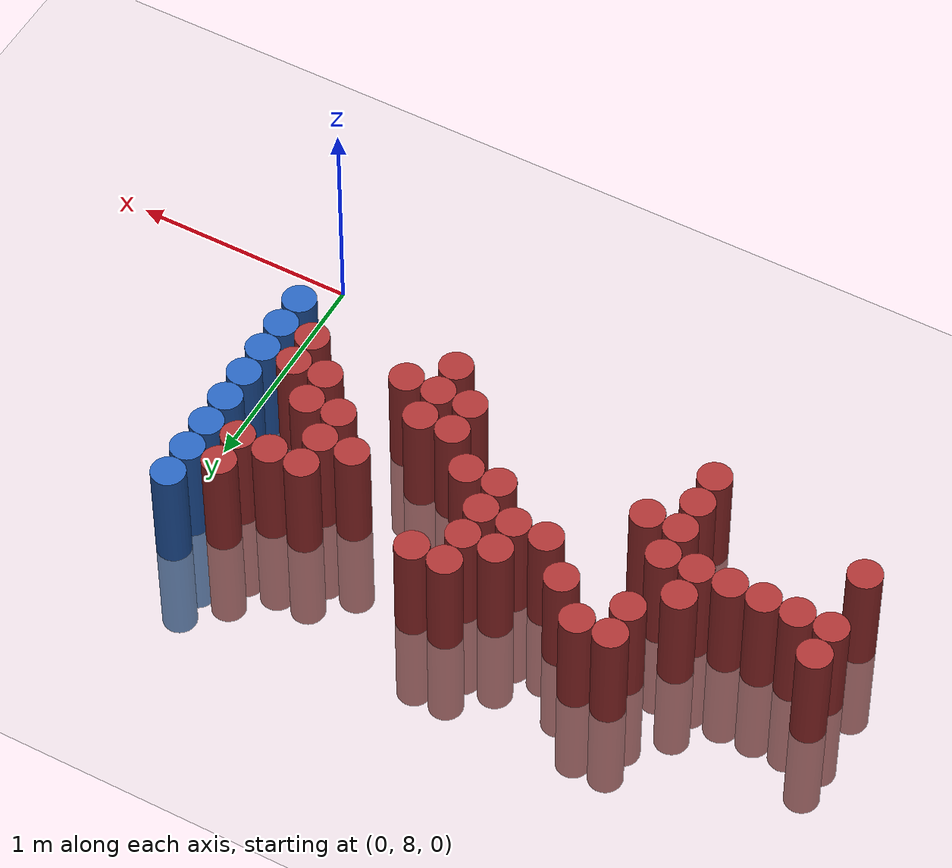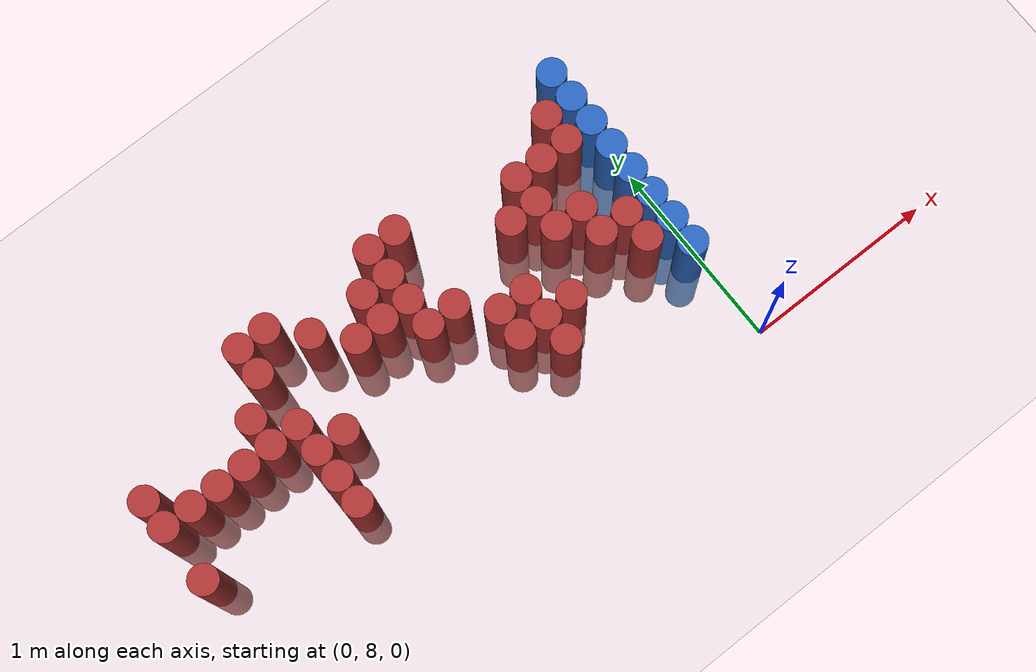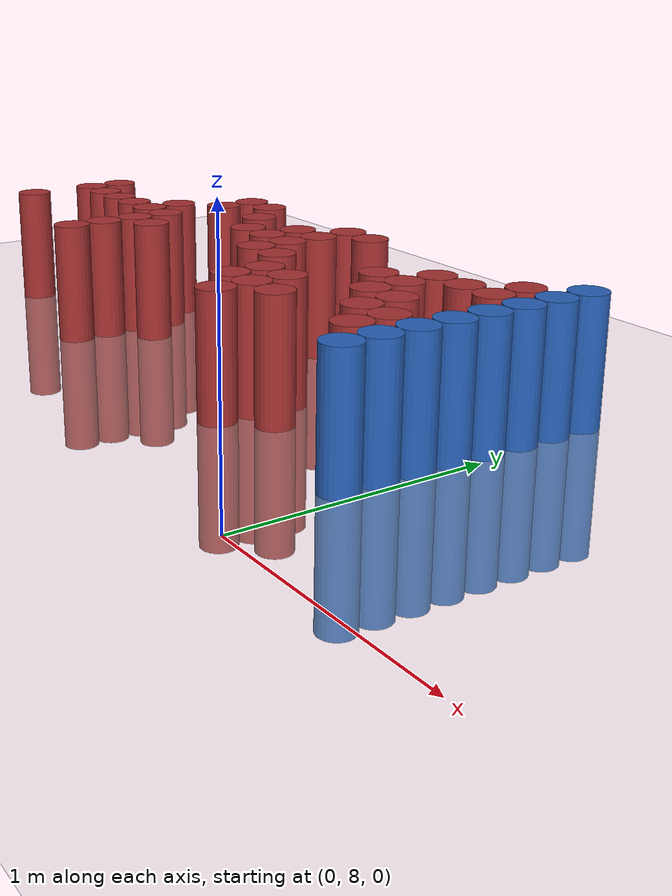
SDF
<sdf version="1.6">
 <world name="default">
  <model name="ground_plane">
   <static>1</static>
   <link name="link">
    <collision name="collision">
     <geometry><plane><normal>0 0 1</normal><size>100 100</size></plane></geometry>
     <surface><friction><ode><mu>100</mu><mu2>50</mu2></ode></friction></surface>
    </collision>
    <visual name="visual">
     <cast_shadows>0</cast_shadows>
     <geometry><plane><normal>0 0 1</normal><size>100 100</size></plane></geometry>
     <material>
      <script><uri>file://media/materials/scripts/gazebo.material</uri><name>Gazebo/Grey</name></script>
     </material>
    </visual>
   </link>
  </model>
  <model name="unit_cylinder_174">
   <static>1</static>
   <pose>-2.775000 8.625000 0.000000 0.000000 0.000000 0.000000</pose>
   <link name="link">
    <inertial>
     <mass>1</mass>
     <inertia><ixx>0.145833</ixx><ixy>0</ixy><ixz>0</ixz><iyy>0.145833</iyy><iyz>0</iyz><izz>0.125</izz></inertia>
    </inertial>
    <collision name="collision">
     <geometry><cylinder><radius>0.075000</radius><length>1</length></cylinder></geometry>
    </collision>
    <visual name="visual">
     <geometry><cylinder><radius>0.075000</radius><length>1</length></cylinder></geometry>
     <material>
      <ambient>0.648000 0.192000 0.192000 1</ambient>
      <diffuse>0.648000 0.192000 0.192000 1</diffuse>
     </material>
     <material>
      <script><name>Gazebo/Grey</name><uri>file://media/materials/scripts/gazebo.material</uri></script>
     </material>
    </visual>
   </link>
  </model>
  <model name="unit_cylinder_175">
   <static>1</static>
   <pose>-2.775000 8.925000 0.000000 0.000000 0.000000 0.000000</pose>
   <link name="link">
    <inertial>
     <mass>1</mass>
     <inertia><ixx>0.145833</ixx><ixy>0</ixy><ixz>0</ixz><iyy>0.145833</iyy><iyz>0</iyz><izz>0.125</izz></inertia>
    </inertial>
    <collision name="collision">
     <geometry><cylinder><radius>0.075000</radius><length>1</length></cylinder></geometry>
    </collision>
    <visual name="visual">
     <geometry><cylinder><radius>0.075000</radius><length>1</length></cylinder></geometry>
     <material>
      <ambient>0.648000 0.192000 0.192000 1</ambient>
      <diffuse>0.648000 0.192000 0.192000 1</diffuse>
     </material>
     <material>
      <script><name>Gazebo/Grey</name><uri>file://media/materials/scripts/gazebo.material</uri></script>
     </material>
    </visual>
   </link>
  </model>
  <model name="unit_cylinder_176">
   <static>1</static>
   <pose>-2.775000 9.075000 0.000000 0.000000 0.000000 0.000000</pose>
   <link name="link">
    <inertial>
     <mass>1</mass>
     <inertia><ixx>0.145833</ixx><ixy>0</ixy><ixz>0</ixz><iyy>0.145833</iyy><iyz>0</iyz><izz>0.125</izz></inertia>
    </inertial>
    <collision name="collision">
     <geometry><cylinder><radius>0.075000</radius><length>1</length></cylinder></geometry>
    </collision>
    <visual name="visual">
     <geometry><cylinder><radius>0.075000</radius><length>1</length></cylinder></geometry>
     <material>
      <ambient>0.648000 0.192000 0.192000 1</ambient>
      <diffuse>0.648000 0.192000 0.192000 1</diffuse>
     </material>
     <material>
      <script><name>Gazebo/Grey</name><uri>file://media/materials/scripts/gazebo.material</uri></script>
     </material>
    </visual>
   </link>
  </model>
  <model name="unit_cylinder_178">
   <static>1</static>
   <pose>-2.625000 8.925000 0.000000 0.000000 0.000000 0.000000</pose>
   <link name="link">
    <inertial>
     <mass>1</mass>
     <inertia><ixx>0.145833</ixx><ixy>0</ixy><ixz>0</ixz><iyy>0.145833</iyy><iyz>0</iyz><izz>0.125</izz></inertia>
    </inertial>
    <collision name="collision">
     <geometry><cylinder><radius>0.075000</radius><length>1</length></cylinder></geometry>
    </collision>
    <visual name="visual">
     <geometry><cylinder><radius>0.075000</radius><length>1</length></cylinder></geometry>
     <material>
      <ambient>0.648000 0.192000 0.192000 1</ambient>
      <diffuse>0.648000 0.192000 0.192000 1</diffuse>
     </material>
     <material>
      <script><name>Gazebo/Grey</name><uri>file://media/materials/scripts/gazebo.material</uri></script>
     </material>
    </visual>
   </link>
  </model>
  <model name="unit_cylinder_182">
   <static>1</static>
   <pose>-2.475000 8.925000 0.000000 0.000000 0.000000 0.000000</pose>
   <link name="link">
    <inertial>
     <mass>1</mass>
     <inertia><ixx>0.145833</ixx><ixy>0</ixy><ixz>0</ixz><iyy>0.145833</iyy><iyz>0</iyz><izz>0.125</izz></inertia>
    </inertial>
    <collision name="collision">
     <geometry><cylinder><radius>0.075000</radius><length>1</length></cylinder></geometry>
    </collision>
    <visual name="visual">
     <geometry><cylinder><radius>0.075000</radius><length>1</length></cylinder></geometry>
     <material>
      <ambient>0.648000 0.192000 0.192000 1</ambient>
      <diffuse>0.648000 0.192000 0.192000 1</diffuse>
     </material>
     <material>
      <script><name>Gazebo/Grey</name><uri>file://media/materials/scripts/gazebo.material</uri></script>
     </material>
    </visual>
   </link>
  </model>
  <model name="unit_cylinder_191">
   <static>1</static>
   <pose>-2.325000 8.925000 0.000000 0.000000 0.000000 0.000000</pose>
   <link name="link">
    <inertial>
     <mass>1</mass>
     <inertia><ixx>0.145833</ixx><ixy>0</ixy><ixz>0</ixz><iyy>0.145833</iyy><iyz>0</iyz><izz>0.125</izz></inertia>
    </inertial>
    <collision name="collision">
     <geometry><cylinder><radius>0.075000</radius><length>1</length></cylinder></geometry>
    </collision>
    <visual name="visual">
     <geometry><cylinder><radius>0.075000</radius><length>1</length></cylinder></geometry>
     <material>
      <ambient>0.648000 0.192000 0.192000 1</ambient>
      <diffuse>0.648000 0.192000 0.192000 1</diffuse>
     </material>
     <material>
      <script><name>Gazebo/Grey</name><uri>file://media/materials/scripts/gazebo.material</uri></script>
     </material>
    </visual>
   </link>
  </model>
  <model name="unit_cylinder_201">
   <static>1</static>
   <pose>-2.175000 8.925000 0.000000 0.000000 0.000000 0.000000</pose>
   <link name="link">
    <inertial>
     <mass>1</mass>
     <inertia><ixx>0.145833</ixx><ixy>0</ixy><ixz>0</ixz><iyy>0.145833</iyy><iyz>0</iyz><izz>0.125</izz></inertia>
    </inertial>
    <collision name="collision">
     <geometry><cylinder><radius>0.075000</radius><length>1</length></cylinder></geometry>
    </collision>
    <visual name="visual">
     <geometry><cylinder><radius>0.075000</radius><length>1</length></cylinder></geometry>
     <material>
      <ambient>0.648000 0.192000 0.192000 1</ambient>
      <diffuse>0.648000 0.192000 0.192000 1</diffuse>
     </material>
     <material>
      <script><name>Gazebo/Grey</name><uri>file://media/materials/scripts/gazebo.material</uri></script>
     </material>
    </visual>
   </link>
  </model>
  <model name="unit_cylinder_202">
   <static>1</static>
   <pose>-2.175000 9.075000 0.000000 0.000000 0.000000 0.000000</pose>
   <link name="link">
    <inertial>
     <mass>1</mass>
     <inertia><ixx>0.145833</ixx><ixy>0</ixy><ixz>0</ixz><iyy>0.145833</iyy><iyz>0</iyz><izz>0.125</izz></inertia>
    </inertial>
    <collision name="collision">
     <geometry><cylinder><radius>0.075000</radius><length>1</length></cylinder></geometry>
    </collision>
    <visual name="visual">
     <geometry><cylinder><radius>0.075000</radius><length>1</length></cylinder></geometry>
     <material>
      <ambient>0.648000 0.192000 0.192000 1</ambient>
      <diffuse>0.648000 0.192000 0.192000 1</diffuse>
     </material>
     <material>
      <script><name>Gazebo/Grey</name><uri>file://media/materials/scripts/gazebo.material</uri></script>
     </material>
    </visual>
   </link>
  </model>
  <model name="unit_cylinder_210">
   <static>1</static>
   <pose>-2.025000 8.475000 0.000000 0.000000 0.000000 0.000000</pose>
   <link name="link">
    <inertial>
     <mass>1</mass>
     <inertia><ixx>0.145833</ixx><ixy>0</ixy><ixz>0</ixz><iyy>0.145833</iyy><iyz>0</iyz><izz>0.125</izz></inertia>
    </inertial>
    <collision name="collision">
     <geometry><cylinder><radius>0.075000</radius><length>1</length></cylinder></geometry>
    </collision>
    <visual name="visual">
     <geometry><cylinder><radius>0.075000</radius><length>1</length></cylinder></geometry>
     <material>
      <ambient>0.648000 0.192000 0.192000 1</ambient>
      <diffuse>0.648000 0.192000 0.192000 1</diffuse>
     </material>
     <material>
      <script><name>Gazebo/Grey</name><uri>file://media/materials/scripts/gazebo.material</uri></script>
     </material>
    </visual>
   </link>
  </model>
  <model name="unit_cylinder_211">
   <static>1</static>
   <pose>-2.025000 8.625000 0.000000 0.000000 0.000000 0.000000</pose>
   <link name="link">
    <inertial>
     <mass>1</mass>
     <inertia><ixx>0.145833</ixx><ixy>0</ixy><ixz>0</ixz><iyy>0.145833</iyy><iyz>0</iyz><izz>0.125</izz></inertia>
    </inertial>
    <collision name="collision">
     <geometry><cylinder><radius>0.075000</radius><length>1</length></cylinder></geometry>
    </collision>
    <visual name="visual">
     <geometry><cylinder><radius>0.075000</radius><length>1</length></cylinder></geometry>
     <material>
      <ambient>0.648000 0.192000 0.192000 1</ambient>
      <diffuse>0.648000 0.192000 0.192000 1</diffuse>
     </material>
     <material>
      <script><name>Gazebo/Grey</name><uri>file://media/materials/scripts/gazebo.material</uri></script>
     </material>
    </visual>
   </link>
  </model>
  <model name="unit_cylinder_212">
   <static>1</static>
   <pose>-2.025000 8.775000 0.000000 0.000000 0.000000 0.000000</pose>
   <link name="link">
    <inertial>
     <mass>1</mass>
     <inertia><ixx>0.145833</ixx><ixy>0</ixy><ixz>0</ixz><iyy>0.145833</iyy><iyz>0</iyz><izz>0.125</izz></inertia>
    </inertial>
    <collision name="collision">
     <geometry><cylinder><radius>0.075000</radius><length>1</length></cylinder></geometry>
    </collision>
    <visual name="visual">
     <geometry><cylinder><radius>0.075000</radius><length>1</length></cylinder></geometry>
     <material>
      <ambient>0.648000 0.192000 0.192000 1</ambient>
      <diffuse>0.648000 0.192000 0.192000 1</diffuse>
     </material>
     <material>
      <script><name>Gazebo/Grey</name><uri>file://media/materials/scripts/gazebo.material</uri></script>
     </material>
    </visual>
   </link>
  </model>
  <model name="unit_cylinder_213">
   <static>1</static>
   <pose>-2.025000 8.925000 0.000000 0.000000 0.000000 0.000000</pose>
   <link name="link">
    <inertial>
     <mass>1</mass>
     <inertia><ixx>0.145833</ixx><ixy>0</ixy><ixz>0</ixz><iyy>0.145833</iyy><iyz>0</iyz><izz>0.125</izz></inertia>
    </inertial>
    <collision name="collision">
     <geometry><cylinder><radius>0.075000</radius><length>1</length></cylinder></geometry>
    </collision>
    <visual name="visual">
     <geometry><cylinder><radius>0.075000</radius><length>1</length></cylinder></geometry>
     <material>
      <ambient>0.648000 0.192000 0.192000 1</ambient>
      <diffuse>0.648000 0.192000 0.192000 1</diffuse>
     </material>
     <material>
      <script><name>Gazebo/Grey</name><uri>file://media/materials/scripts/gazebo.material</uri></script>
     </material>
    </visual>
   </link>
  </model>
  <model name="unit_cylinder_214">
   <static>1</static>
   <pose>-2.025000 9.225000 0.000000 0.000000 0.000000 0.000000</pose>
   <link name="link">
    <inertial>
     <mass>1</mass>
     <inertia><ixx>0.145833</ixx><ixy>0</ixy><ixz>0</ixz><iyy>0.145833</iyy><iyz>0</iyz><izz>0.125</izz></inertia>
    </inertial>
    <collision name="collision">
     <geometry><cylinder><radius>0.075000</radius><length>1</length></cylinder></geometry>
    </collision>
    <visual name="visual">
     <geometry><cylinder><radius>0.075000</radius><length>1</length></cylinder></geometry>
     <material>
      <ambient>0.648000 0.192000 0.192000 1</ambient>
      <diffuse>0.648000 0.192000 0.192000 1</diffuse>
     </material>
     <material>
      <script><name>Gazebo/Grey</name><uri>file://media/materials/scripts/gazebo.material</uri></script>
     </material>
    </visual>
   </link>
  </model>
  <model name="unit_cylinder_215">
   <static>1</static>
   <pose>-2.025000 9.375000 0.000000 0.000000 0.000000 0.000000</pose>
   <link name="link">
    <inertial>
     <mass>1</mass>
     <inertia><ixx>0.145833</ixx><ixy>0</ixy><ixz>0</ixz><iyy>0.145833</iyy><iyz>0</iyz><izz>0.125</izz></inertia>
    </inertial>
    <collision name="collision">
     <geometry><cylinder><radius>0.075000</radius><length>1</length></cylinder></geometry>
    </collision>
    <visual name="visual">
     <geometry><cylinder><radius>0.075000</radius><length>1</length></cylinder></geometry>
     <material>
      <ambient>0.648000 0.192000 0.192000 1</ambient>
      <diffuse>0.648000 0.192000 0.192000 1</diffuse>
     </material>
     <material>
      <script><name>Gazebo/Grey</name><uri>file://media/materials/scripts/gazebo.material</uri></script>
     </material>
    </visual>
   </link>
  </model>
  <model name="unit_cylinder_217">
   <static>1</static>
   <pose>-1.875000 8.775000 0.000000 0.000000 0.000000 0.000000</pose>
   <link name="link">
    <inertial>
     <mass>1</mass>
     <inertia><ixx>0.145833</ixx><ixy>0</ixy><ixz>0</ixz><iyy>0.145833</iyy><iyz>0</iyz><izz>0.125</izz></inertia>
    </inertial>
    <collision name="collision">
     <geometry><cylinder><radius>0.075000</radius><length>1</length></cylinder></geometry>
    </collision>
    <visual name="visual">
     <geometry><cylinder><radius>0.075000</radius><length>1</length></cylinder></geometry>
     <material>
      <ambient>0.648000 0.192000 0.192000 1</ambient>
      <diffuse>0.648000 0.192000 0.192000 1</diffuse>
     </material>
     <material>
      <script><name>Gazebo/Grey</name><uri>file://media/materials/scripts/gazebo.material</uri></script>
     </material>
    </visual>
   </link>
  </model>
  <model name="unit_cylinder_218">
   <static>1</static>
   <pose>-1.875000 9.375000 0.000000 0.000000 0.000000 0.000000</pose>
   <link name="link">
    <inertial>
     <mass>1</mass>
     <inertia><ixx>0.145833</ixx><ixy>0</ixy><ixz>0</ixz><iyy>0.145833</iyy><iyz>0</iyz><izz>0.125</izz></inertia>
    </inertial>
    <collision name="collision">
     <geometry><cylinder><radius>0.075000</radius><length>1</length></cylinder></geometry>
    </collision>
    <visual name="visual">
     <geometry><cylinder><radius>0.075000</radius><length>1</length></cylinder></geometry>
     <material>
      <ambient>0.648000 0.192000 0.192000 1</ambient>
      <diffuse>0.648000 0.192000 0.192000 1</diffuse>
     </material>
     <material>
      <script><name>Gazebo/Grey</name><uri>file://media/materials/scripts/gazebo.material</uri></script>
     </material>
    </visual>
   </link>
  </model>
  <model name="unit_cylinder_220">
   <static>1</static>
   <pose>-1.725000 9.225000 0.000000 0.000000 0.000000 0.000000</pose>
   <link name="link">
    <inertial>
     <mass>1</mass>
     <inertia><ixx>0.145833</ixx><ixy>0</ixy><ixz>0</ixz><iyy>0.145833</iyy><iyz>0</iyz><izz>0.125</izz></inertia>
    </inertial>
    <collision name="collision">
     <geometry><cylinder><radius>0.075000</radius><length>1</length></cylinder></geometry>
    </collision>
    <visual name="visual">
     <geometry><cylinder><radius>0.075000</radius><length>1</length></cylinder></geometry>
     <material>
      <ambient>0.648000 0.192000 0.192000 1</ambient>
      <diffuse>0.648000 0.192000 0.192000 1</diffuse>
     </material>
     <material>
      <script><name>Gazebo/Grey</name><uri>file://media/materials/scripts/gazebo.material</uri></script>
     </material>
    </visual>
   </link>
  </model>
  <model name="unit_cylinder_223">
   <static>1</static>
   <pose>-1.575000 9.075000 0.000000 0.000000 0.000000 0.000000</pose>
   <link name="link">
    <inertial>
     <mass>1</mass>
     <inertia><ixx>0.145833</ixx><ixy>0</ixy><ixz>0</ixz><iyy>0.145833</iyy><iyz>0</iyz><izz>0.125</izz></inertia>
    </inertial>
    <collision name="collision">
     <geometry><cylinder><radius>0.075000</radius><length>1</length></cylinder></geometry>
    </collision>
    <visual name="visual">
     <geometry><cylinder><radius>0.075000</radius><length>1</length></cylinder></geometry>
     <material>
      <ambient>0.648000 0.192000 0.192000 1</ambient>
      <diffuse>0.648000 0.192000 0.192000 1</diffuse>
     </material>
     <material>
      <script><name>Gazebo/Grey</name><uri>file://media/materials/scripts/gazebo.material</uri></script>
     </material>
    </visual>
   </link>
  </model>
  <model name="unit_cylinder_225">
   <static>1</static>
   <pose>-1.425000 9.075000 0.000000 0.000000 0.000000 0.000000</pose>
   <link name="link">
    <inertial>
     <mass>1</mass>
     <inertia><ixx>0.145833</ixx><ixy>0</ixy><ixz>0</ixz><iyy>0.145833</iyy><iyz>0</iyz><izz>0.125</izz></inertia>
    </inertial>
    <collision name="collision">
     <geometry><cylinder><radius>0.075000</radius><length>1</length></cylinder></geometry>
    </collision>
    <visual name="visual">
     <geometry><cylinder><radius>0.075000</radius><length>1</length></cylinder></geometry>
     <material>
      <ambient>0.648000 0.192000 0.192000 1</ambient>
      <diffuse>0.648000 0.192000 0.192000 1</diffuse>
     </material>
     <material>
      <script><name>Gazebo/Grey</name><uri>file://media/materials/scripts/gazebo.material</uri></script>
     </material>
    </visual>
   </link>
  </model>
  <model name="unit_cylinder_226">
   <static>1</static>
   <pose>-1.425000 9.225000 0.000000 0.000000 0.000000 0.000000</pose>
   <link name="link">
    <inertial>
     <mass>1</mass>
     <inertia><ixx>0.145833</ixx><ixy>0</ixy><ixz>0</ixz><iyy>0.145833</iyy><iyz>0</iyz><izz>0.125</izz></inertia>
    </inertial>
    <collision name="collision">
     <geometry><cylinder><radius>0.075000</radius><length>1</length></cylinder></geometry>
    </collision>
    <visual name="visual">
     <geometry><cylinder><radius>0.075000</radius><length>1</length></cylinder></geometry>
     <material>
      <ambient>0.648000 0.192000 0.192000 1</ambient>
      <diffuse>0.648000 0.192000 0.192000 1</diffuse>
     </material>
     <material>
      <script><name>Gazebo/Grey</name><uri>file://media/materials/scripts/gazebo.material</uri></script>
     </material>
    </visual>
   </link>
  </model>
  <model name="unit_cylinder_228">
   <static>1</static>
   <pose>-1.275000 8.925000 0.000000 0.000000 0.000000 0.000000</pose>
   <link name="link">
    <inertial>
     <mass>1</mass>
     <inertia><ixx>0.145833</ixx><ixy>0</ixy><ixz>0</ixz><iyy>0.145833</iyy><iyz>0</iyz><izz>0.125</izz></inertia>
    </inertial>
    <collision name="collision">
     <geometry><cylinder><radius>0.075000</radius><length>1</length></cylinder></geometry>
    </collision>
    <visual name="visual">
     <geometry><cylinder><radius>0.075000</radius><length>1</length></cylinder></geometry>
     <material>
      <ambient>0.648000 0.192000 0.192000 1</ambient>
      <diffuse>0.648000 0.192000 0.192000 1</diffuse>
     </material>
     <material>
      <script><name>Gazebo/Grey</name><uri>file://media/materials/scripts/gazebo.material</uri></script>
     </material>
    </visual>
   </link>
  </model>
  <model name="unit_cylinder_229">
   <static>1</static>
   <pose>-1.275000 9.075000 0.000000 0.000000 0.000000 0.000000</pose>
   <link name="link">
    <inertial>
     <mass>1</mass>
     <inertia><ixx>0.145833</ixx><ixy>0</ixy><ixz>0</ixz><iyy>0.145833</iyy><iyz>0</iyz><izz>0.125</izz></inertia>
    </inertial>
    <collision name="collision">
     <geometry><cylinder><radius>0.075000</radius><length>1</length></cylinder></geometry>
    </collision>
    <visual name="visual">
     <geometry><cylinder><radius>0.075000</radius><length>1</length></cylinder></geometry>
     <material>
      <ambient>0.648000 0.192000 0.192000 1</ambient>
      <diffuse>0.648000 0.192000 0.192000 1</diffuse>
     </material>
     <material>
      <script><name>Gazebo/Grey</name><uri>file://media/materials/scripts/gazebo.material</uri></script>
     </material>
    </visual>
   </link>
  </model>
  <model name="unit_cylinder_230">
   <static>1</static>
   <pose>-1.275000 9.225000 0.000000 0.000000 0.000000 0.000000</pose>
   <link name="link">
    <inertial>
     <mass>1</mass>
     <inertia><ixx>0.145833</ixx><ixy>0</ixy><ixz>0</ixz><iyy>0.145833</iyy><iyz>0</iyz><izz>0.125</izz></inertia>
    </inertial>
    <collision name="collision">
     <geometry><cylinder><radius>0.075000</radius><length>1</length></cylinder></geometry>
    </collision>
    <visual name="visual">
     <geometry><cylinder><radius>0.075000</radius><length>1</length></cylinder></geometry>
     <material>
      <ambient>0.648000 0.192000 0.192000 1</ambient>
      <diffuse>0.648000 0.192000 0.192000 1</diffuse>
     </material>
     <material>
      <script><name>Gazebo/Grey</name><uri>file://media/materials/scripts/gazebo.material</uri></script>
     </material>
    </visual>
   </link>
  </model>
  <model name="unit_cylinder_231">
   <static>1</static>
   <pose>-1.275000 9.375000 0.000000 0.000000 0.000000 0.000000</pose>
   <link name="link">
    <inertial>
     <mass>1</mass>
     <inertia><ixx>0.145833</ixx><ixy>0</ixy><ixz>0</ixz><iyy>0.145833</iyy><iyz>0</iyz><izz>0.125</izz></inertia>
    </inertial>
    <collision name="collision">
     <geometry><cylinder><radius>0.075000</radius><length>1</length></cylinder></geometry>
    </collision>
    <visual name="visual">
     <geometry><cylinder><radius>0.075000</radius><length>1</length></cylinder></geometry>
     <material>
      <ambient>0.648000 0.192000 0.192000 1</ambient>
      <diffuse>0.648000 0.192000 0.192000 1</diffuse>
     </material>
     <material>
      <script><name>Gazebo/Grey</name><uri>file://media/materials/scripts/gazebo.material</uri></script>
     </material>
    </visual>
   </link>
  </model>
  <model name="unit_cylinder_234">
   <static>1</static>
   <pose>-1.125000 8.925000 0.000000 0.000000 0.000000 0.000000</pose>
   <link name="link">
    <inertial>
     <mass>1</mass>
     <inertia><ixx>0.145833</ixx><ixy>0</ixy><ixz>0</ixz><iyy>0.145833</iyy><iyz>0</iyz><izz>0.125</izz></inertia>
    </inertial>
    <collision name="collision">
     <geometry><cylinder><radius>0.075000</radius><length>1</length></cylinder></geometry>
    </collision>
    <visual name="visual">
     <geometry><cylinder><radius>0.075000</radius><length>1</length></cylinder></geometry>
     <material>
      <ambient>0.648000 0.192000 0.192000 1</ambient>
      <diffuse>0.648000 0.192000 0.192000 1</diffuse>
     </material>
     <material>
      <script><name>Gazebo/Grey</name><uri>file://media/materials/scripts/gazebo.material</uri></script>
     </material>
    </visual>
   </link>
  </model>
  <model name="unit_cylinder_235">
   <static>1</static>
   <pose>-1.125000 9.375000 0.000000 0.000000 0.000000 0.000000</pose>
   <link name="link">
    <inertial>
     <mass>1</mass>
     <inertia><ixx>0.145833</ixx><ixy>0</ixy><ixz>0</ixz><iyy>0.145833</iyy><iyz>0</iyz><izz>0.125</izz></inertia>
    </inertial>
    <collision name="collision">
     <geometry><cylinder><radius>0.075000</radius><length>1</length></cylinder></geometry>
    </collision>
    <visual name="visual">
     <geometry><cylinder><radius>0.075000</radius><length>1</length></cylinder></geometry>
     <material>
      <ambient>0.648000 0.192000 0.192000 1</ambient>
      <diffuse>0.648000 0.192000 0.192000 1</diffuse>
     </material>
     <material>
      <script><name>Gazebo/Grey</name><uri>file://media/materials/scripts/gazebo.material</uri></script>
     </material>
    </visual>
   </link>
  </model>
  <model name="unit_cylinder_236">
   <static>1</static>
   <pose>-0.975000 8.625000 0.000000 0.000000 0.000000 0.000000</pose>
   <link name="link">
    <inertial>
     <mass>1</mass>
     <inertia><ixx>0.145833</ixx><ixy>0</ixy><ixz>0</ixz><iyy>0.145833</iyy><iyz>0</iyz><izz>0.125</izz></inertia>
    </inertial>
    <collision name="collision">
     <geometry><cylinder><radius>0.075000</radius><length>1</length></cylinder></geometry>
    </collision>
    <visual name="visual">
     <geometry><cylinder><radius>0.075000</radius><length>1</length></cylinder></geometry>
     <material>
      <ambient>0.648000 0.192000 0.192000 1</ambient>
      <diffuse>0.648000 0.192000 0.192000 1</diffuse>
     </material>
     <material>
      <script><name>Gazebo/Grey</name><uri>file://media/materials/scripts/gazebo.material</uri></script>
     </material>
    </visual>
   </link>
  </model>
  <model name="unit_cylinder_237">
   <static>1</static>
   <pose>-0.975000 8.775000 0.000000 0.000000 0.000000 0.000000</pose>
   <link name="link">
    <inertial>
     <mass>1</mass>
     <inertia><ixx>0.145833</ixx><ixy>0</ixy><ixz>0</ixz><iyy>0.145833</iyy><iyz>0</iyz><izz>0.125</izz></inertia>
    </inertial>
    <collision name="collision">
     <geometry><cylinder><radius>0.075000</radius><length>1</length></cylinder></geometry>
    </collision>
    <visual name="visual">
     <geometry><cylinder><radius>0.075000</radius><length>1</length></cylinder></geometry>
     <material>
      <ambient>0.648000 0.192000 0.192000 1</ambient>
      <diffuse>0.648000 0.192000 0.192000 1</diffuse>
     </material>
     <material>
      <script><name>Gazebo/Grey</name><uri>file://media/materials/scripts/gazebo.material</uri></script>
     </material>
    </visual>
   </link>
  </model>
  <model name="unit_cylinder_240">
   <static>1</static>
   <pose>-0.825000 8.475000 0.000000 0.000000 0.000000 0.000000</pose>
   <link name="link">
    <inertial>
     <mass>1</mass>
     <inertia><ixx>0.145833</ixx><ixy>0</ixy><ixz>0</ixz><iyy>0.145833</iyy><iyz>0</iyz><izz>0.125</izz></inertia>
    </inertial>
    <collision name="collision">
     <geometry><cylinder><radius>0.075000</radius><length>1</length></cylinder></geometry>
    </collision>
    <visual name="visual">
     <geometry><cylinder><radius>0.075000</radius><length>1</length></cylinder></geometry>
     <material>
      <ambient>0.648000 0.192000 0.192000 1</ambient>
      <diffuse>0.648000 0.192000 0.192000 1</diffuse>
     </material>
     <material>
      <script><name>Gazebo/Grey</name><uri>file://media/materials/scripts/gazebo.material</uri></script>
     </material>
    </visual>
   </link>
  </model>
  <model name="unit_cylinder_241">
   <static>1</static>
   <pose>-0.825000 8.625000 0.000000 0.000000 0.000000 0.000000</pose>
   <link name="link">
    <inertial>
     <mass>1</mass>
     <inertia><ixx>0.145833</ixx><ixy>0</ixy><ixz>0</ixz><iyy>0.145833</iyy><iyz>0</iyz><izz>0.125</izz></inertia>
    </inertial>
    <collision name="collision">
     <geometry><cylinder><radius>0.075000</radius><length>1</length></cylinder></geometry>
    </collision>
    <visual name="visual">
     <geometry><cylinder><radius>0.075000</radius><length>1</length></cylinder></geometry>
     <material>
      <ambient>0.648000 0.192000 0.192000 1</ambient>
      <diffuse>0.648000 0.192000 0.192000 1</diffuse>
     </material>
     <material>
      <script><name>Gazebo/Grey</name><uri>file://media/materials/scripts/gazebo.material</uri></script>
     </material>
    </visual>
   </link>
  </model>
  <model name="unit_cylinder_242">
   <static>1</static>
   <pose>-0.825000 8.775000 0.000000 0.000000 0.000000 0.000000</pose>
   <link name="link">
    <inertial>
     <mass>1</mass>
     <inertia><ixx>0.145833</ixx><ixy>0</ixy><ixz>0</ixz><iyy>0.145833</iyy><iyz>0</iyz><izz>0.125</izz></inertia>
    </inertial>
    <collision name="collision">
     <geometry><cylinder><radius>0.075000</radius><length>1</length></cylinder></geometry>
    </collision>
    <visual name="visual">
     <geometry><cylinder><radius>0.075000</radius><length>1</length></cylinder></geometry>
     <material>
      <ambient>0.648000 0.192000 0.192000 1</ambient>
      <diffuse>0.648000 0.192000 0.192000 1</diffuse>
     </material>
     <material>
      <script><name>Gazebo/Grey</name><uri>file://media/materials/scripts/gazebo.material</uri></script>
     </material>
    </visual>
   </link>
  </model>
  <model name="unit_cylinder_248">
   <static>1</static>
   <pose>-0.675000 8.625000 0.000000 0.000000 0.000000 0.000000</pose>
   <link name="link">
    <inertial>
     <mass>1</mass>
     <inertia><ixx>0.145833</ixx><ixy>0</ixy><ixz>0</ixz><iyy>0.145833</iyy><iyz>0</iyz><izz>0.125</izz></inertia>
    </inertial>
    <collision name="collision">
     <geometry><cylinder><radius>0.075000</radius><length>1</length></cylinder></geometry>
    </collision>
    <visual name="visual">
     <geometry><cylinder><radius>0.075000</radius><length>1</length></cylinder></geometry>
     <material>
      <ambient>0.648000 0.192000 0.192000 1</ambient>
      <diffuse>0.648000 0.192000 0.192000 1</diffuse>
     </material>
     <material>
      <script><name>Gazebo/Grey</name><uri>file://media/materials/scripts/gazebo.material</uri></script>
     </material>
    </visual>
   </link>
  </model>
  <model name="unit_cylinder_249">
   <static>1</static>
   <pose>-0.675000 9.075000 0.000000 0.000000 0.000000 0.000000</pose>
   <link name="link">
    <inertial>
     <mass>1</mass>
     <inertia><ixx>0.145833</ixx><ixy>0</ixy><ixz>0</ixz><iyy>0.145833</iyy><iyz>0</iyz><izz>0.125</izz></inertia>
    </inertial>
    <collision name="collision">
     <geometry><cylinder><radius>0.075000</radius><length>1</length></cylinder></geometry>
    </collision>
    <visual name="visual">
     <geometry><cylinder><radius>0.075000</radius><length>1</length></cylinder></geometry>
     <material>
      <ambient>0.648000 0.192000 0.192000 1</ambient>
      <diffuse>0.648000 0.192000 0.192000 1</diffuse>
     </material>
     <material>
      <script><name>Gazebo/Grey</name><uri>file://media/materials/scripts/gazebo.material</uri></script>
     </material>
    </visual>
   </link>
  </model>
  <model name="unit_cylinder_251">
   <static>1</static>
   <pose>-0.525000 8.925000 0.000000 0.000000 0.000000 0.000000</pose>
   <link name="link">
    <inertial>
     <mass>1</mass>
     <inertia><ixx>0.145833</ixx><ixy>0</ixy><ixz>0</ixz><iyy>0.145833</iyy><iyz>0</iyz><izz>0.125</izz></inertia>
    </inertial>
    <collision name="collision">
     <geometry><cylinder><radius>0.075000</radius><length>1</length></cylinder></geometry>
    </collision>
    <visual name="visual">
     <geometry><cylinder><radius>0.075000</radius><length>1</length></cylinder></geometry>
     <material>
      <ambient>0.648000 0.192000 0.192000 1</ambient>
      <diffuse>0.648000 0.192000 0.192000 1</diffuse>
     </material>
     <material>
      <script><name>Gazebo/Grey</name><uri>file://media/materials/scripts/gazebo.material</uri></script>
     </material>
    </visual>
   </link>
  </model>
  <model name="unit_cylinder_252">
   <static>1</static>
   <pose>-0.525000 9.075000 0.000000 0.000000 0.000000 0.000000</pose>
   <link name="link">
    <inertial>
     <mass>1</mass>
     <inertia><ixx>0.145833</ixx><ixy>0</ixy><ixz>0</ixz><iyy>0.145833</iyy><iyz>0</iyz><izz>0.125</izz></inertia>
    </inertial>
    <collision name="collision">
     <geometry><cylinder><radius>0.075000</radius><length>1</length></cylinder></geometry>
    </collision>
    <visual name="visual">
     <geometry><cylinder><radius>0.075000</radius><length>1</length></cylinder></geometry>
     <material>
      <ambient>0.648000 0.192000 0.192000 1</ambient>
      <diffuse>0.648000 0.192000 0.192000 1</diffuse>
     </material>
     <material>
      <script><name>Gazebo/Grey</name><uri>file://media/materials/scripts/gazebo.material</uri></script>
     </material>
    </visual>
   </link>
  </model>
  <model name="unit_cylinder_253">
   <static>1</static>
   <pose>-0.525000 9.225000 0.000000 0.000000 0.000000 0.000000</pose>
   <link name="link">
    <inertial>
     <mass>1</mass>
     <inertia><ixx>0.145833</ixx><ixy>0</ixy><ixz>0</ixz><iyy>0.145833</iyy><iyz>0</iyz><izz>0.125</izz></inertia>
    </inertial>
    <collision name="collision">
     <geometry><cylinder><radius>0.075000</radius><length>1</length></cylinder></geometry>
    </collision>
    <visual name="visual">
     <geometry><cylinder><radius>0.075000</radius><length>1</length></cylinder></geometry>
     <material>
      <ambient>0.648000 0.192000 0.192000 1</ambient>
      <diffuse>0.648000 0.192000 0.192000 1</diffuse>
     </material>
     <material>
      <script><name>Gazebo/Grey</name><uri>file://media/materials/scripts/gazebo.material</uri></script>
     </material>
    </visual>
   </link>
  </model>
  <model name="unit_cylinder_256">
   <static>1</static>
   <pose>-0.375000 8.775000 0.000000 0.000000 0.000000 0.000000</pose>
   <link name="link">
    <inertial>
     <mass>1</mass>
     <inertia><ixx>0.145833</ixx><ixy>0</ixy><ixz>0</ixz><iyy>0.145833</iyy><iyz>0</iyz><izz>0.125</izz></inertia>
    </inertial>
    <collision name="collision">
     <geometry><cylinder><radius>0.075000</radius><length>1</length></cylinder></geometry>
    </collision>
    <visual name="visual">
     <geometry><cylinder><radius>0.075000</radius><length>1</length></cylinder></geometry>
     <material>
      <ambient>0.648000 0.192000 0.192000 1</ambient>
      <diffuse>0.648000 0.192000 0.192000 1</diffuse>
     </material>
     <material>
      <script><name>Gazebo/Grey</name><uri>file://media/materials/scripts/gazebo.material</uri></script>
     </material>
    </visual>
   </link>
  </model>
  <model name="unit_cylinder_257">
   <static>1</static>
   <pose>-0.375000 8.925000 0.000000 0.000000 0.000000 0.000000</pose>
   <link name="link">
    <inertial>
     <mass>1</mass>
     <inertia><ixx>0.145833</ixx><ixy>0</ixy><ixz>0</ixz><iyy>0.145833</iyy><iyz>0</iyz><izz>0.125</izz></inertia>
    </inertial>
    <collision name="collision">
     <geometry><cylinder><radius>0.075000</radius><length>1</length></cylinder></geometry>
    </collision>
    <visual name="visual">
     <geometry><cylinder><radius>0.075000</radius><length>1</length></cylinder></geometry>
     <material>
      <ambient>0.648000 0.192000 0.192000 1</ambient>
      <diffuse>0.648000 0.192000 0.192000 1</diffuse>
     </material>
     <material>
      <script><name>Gazebo/Grey</name><uri>file://media/materials/scripts/gazebo.material</uri></script>
     </material>
    </visual>
   </link>
  </model>
  <model name="unit_cylinder_258">
   <static>1</static>
   <pose>-0.375000 9.225000 0.000000 0.000000 0.000000 0.000000</pose>
   <link name="link">
    <inertial>
     <mass>1</mass>
     <inertia><ixx>0.145833</ixx><ixy>0</ixy><ixz>0</ixz><iyy>0.145833</iyy><iyz>0</iyz><izz>0.125</izz></inertia>
    </inertial>
    <collision name="collision">
     <geometry><cylinder><radius>0.075000</radius><length>1</length></cylinder></geometry>
    </collision>
    <visual name="visual">
     <geometry><cylinder><radius>0.075000</radius><length>1</length></cylinder></geometry>
     <material>
      <ambient>0.648000 0.192000 0.192000 1</ambient>
      <diffuse>0.648000 0.192000 0.192000 1</diffuse>
     </material>
     <material>
      <script><name>Gazebo/Grey</name><uri>file://media/materials/scripts/gazebo.material</uri></script>
     </material>
    </visual>
   </link>
  </model>
  <model name="unit_cylinder_273">
   <static>1</static>
   <pose>-0.225000 8.625000 0.000000 0.000000 0.000000 0.000000</pose>
   <link name="link">
    <inertial>
     <mass>1</mass>
     <inertia><ixx>0.145833</ixx><ixy>0</ixy><ixz>0</ixz><iyy>0.145833</iyy><iyz>0</iyz><izz>0.125</izz></inertia>
    </inertial>
    <collision name="collision">
     <geometry><cylinder><radius>0.075000</radius><length>1</length></cylinder></geometry>
    </collision>
    <visual name="visual">
     <geometry><cylinder><radius>0.075000</radius><length>1</length></cylinder></geometry>
     <material>
      <ambient>0.648000 0.192000 0.192000 1</ambient>
      <diffuse>0.648000 0.192000 0.192000 1</diffuse>
     </material>
     <material>
      <script><name>Gazebo/Grey</name><uri>file://media/materials/scripts/gazebo.material</uri></script>
     </material>
    </visual>
   </link>
  </model>
  <model name="unit_cylinder_274">
   <static>1</static>
   <pose>-0.225000 8.775000 0.000000 0.000000 0.000000 0.000000</pose>
   <link name="link">
    <inertial>
     <mass>1</mass>
     <inertia><ixx>0.145833</ixx><ixy>0</ixy><ixz>0</ixz><iyy>0.145833</iyy><iyz>0</iyz><izz>0.125</izz></inertia>
    </inertial>
    <collision name="collision">
     <geometry><cylinder><radius>0.075000</radius><length>1</length></cylinder></geometry>
    </collision>
    <visual name="visual">
     <geometry><cylinder><radius>0.075000</radius><length>1</length></cylinder></geometry>
     <material>
      <ambient>0.648000 0.192000 0.192000 1</ambient>
      <diffuse>0.648000 0.192000 0.192000 1</diffuse>
     </material>
     <material>
      <script><name>Gazebo/Grey</name><uri>file://media/materials/scripts/gazebo.material</uri></script>
     </material>
    </visual>
   </link>
  </model>
  <model name="unit_cylinder_275">
   <static>1</static>
   <pose>-0.225000 9.225000 0.000000 0.000000 0.000000 0.000000</pose>
   <link name="link">
    <inertial>
     <mass>1</mass>
     <inertia><ixx>0.145833</ixx><ixy>0</ixy><ixz>0</ixz><iyy>0.145833</iyy><iyz>0</iyz><izz>0.125</izz></inertia>
    </inertial>
    <collision name="collision">
     <geometry><cylinder><radius>0.075000</radius><length>1</length></cylinder></geometry>
    </collision>
    <visual name="visual">
     <geometry><cylinder><radius>0.075000</radius><length>1</length></cylinder></geometry>
     <material>
      <ambient>0.648000 0.192000 0.192000 1</ambient>
      <diffuse>0.648000 0.192000 0.192000 1</diffuse>
     </material>
     <material>
      <script><name>Gazebo/Grey</name><uri>file://media/materials/scripts/gazebo.material</uri></script>
     </material>
    </visual>
   </link>
  </model>
  <model name="unit_cylinder_276">
   <static>1</static>
   <pose>-0.225000 9.375000 0.000000 0.000000 0.000000 0.000000</pose>
   <link name="link">
    <inertial>
     <mass>1</mass>
     <inertia><ixx>0.145833</ixx><ixy>0</ixy><ixz>0</ixz><iyy>0.145833</iyy><iyz>0</iyz><izz>0.125</izz></inertia>
    </inertial>
    <collision name="collision">
     <geometry><cylinder><radius>0.075000</radius><length>1</length></cylinder></geometry>
    </collision>
    <visual name="visual">
     <geometry><cylinder><radius>0.075000</radius><length>1</length></cylinder></geometry>
     <material>
      <ambient>0.648000 0.192000 0.192000 1</ambient>
      <diffuse>0.648000 0.192000 0.192000 1</diffuse>
     </material>
     <material>
      <script><name>Gazebo/Grey</name><uri>file://media/materials/scripts/gazebo.material</uri></script>
     </material>
    </visual>
   </link>
  </model>
  <model name="unit_cylinder_299">
   <static>1</static>
   <pose>-0.075000 8.475000 0.000000 0.000000 0.000000 0.000000</pose>
   <link name="link">
    <inertial>
     <mass>1</mass>
     <inertia><ixx>0.145833</ixx><ixy>0</ixy><ixz>0</ixz><iyy>0.145833</iyy><iyz>0</iyz><izz>0.125</izz></inertia>
    </inertial>
    <collision name="collision">
     <geometry><cylinder><radius>0.075000</radius><length>1</length></cylinder></geometry>
    </collision>
    <visual name="visual">
     <geometry><cylinder><radius>0.075000</radius><length>1</length></cylinder></geometry>
     <material>
      <ambient>0.152000 0.379000 0.720000 1</ambient>
      <diffuse>0.152000 0.379000 0.720000 1</diffuse>
     </material>
     <material>
      <script><name>Gazebo/Grey</name><uri>file://media/materials/scripts/gazebo.material</uri></script>
     </material>
    </visual>
   </link>
  </model>
  <model name="unit_cylinder_300">
   <static>1</static>
   <pose>-0.075000 8.625000 0.000000 0.000000 0.000000 0.000000</pose>
   <link name="link">
    <inertial>
     <mass>1</mass>
     <inertia><ixx>0.145833</ixx><ixy>0</ixy><ixz>0</ixz><iyy>0.145833</iyy><iyz>0</iyz><izz>0.125</izz></inertia>
    </inertial>
    <collision name="collision">
     <geometry><cylinder><radius>0.075000</radius><length>1</length></cylinder></geometry>
    </collision>
    <visual name="visual">
     <geometry><cylinder><radius>0.075000</radius><length>1</length></cylinder></geometry>
     <material>
      <ambient>0.152000 0.379000 0.720000 1</ambient>
      <diffuse>0.152000 0.379000 0.720000 1</diffuse>
     </material>
     <material>
      <script><name>Gazebo/Grey</name><uri>file://media/materials/scripts/gazebo.material</uri></script>
     </material>
    </visual>
   </link>
  </model>
  <model name="unit_cylinder_301">
   <static>1</static>
   <pose>-0.075000 8.775000 0.000000 0.000000 0.000000 0.000000</pose>
   <link name="link">
    <inertial>
     <mass>1</mass>
     <inertia><ixx>0.145833</ixx><ixy>0</ixy><ixz>0</ixz><iyy>0.145833</iyy><iyz>0</iyz><izz>0.125</izz></inertia>
    </inertial>
    <collision name="collision">
     <geometry><cylinder><radius>0.075000</radius><length>1</length></cylinder></geometry>
    </collision>
    <visual name="visual">
     <geometry><cylinder><radius>0.075000</radius><length>1</length></cylinder></geometry>
     <material>
      <ambient>0.152000 0.379000 0.720000 1</ambient>
      <diffuse>0.152000 0.379000 0.720000 1</diffuse>
     </material>
     <material>
      <script><name>Gazebo/Grey</name><uri>file://media/materials/scripts/gazebo.material</uri></script>
     </material>
    </visual>
   </link>
  </model>
  <model name="unit_cylinder_302">
   <static>1</static>
   <pose>-0.075000 8.925000 0.000000 0.000000 0.000000 0.000000</pose>
   <link name="link">
    <inertial>
     <mass>1</mass>
     <inertia><ixx>0.145833</ixx><ixy>0</ixy><ixz>0</ixz><iyy>0.145833</iyy><iyz>0</iyz><izz>0.125</izz></inertia>
    </inertial>
    <collision name="collision">
     <geometry><cylinder><radius>0.075000</radius><length>1</length></cylinder></geometry>
    </collision>
    <visual name="visual">
     <geometry><cylinder><radius>0.075000</radius><length>1</length></cylinder></geometry>
     <material>
      <ambient>0.152000 0.379000 0.720000 1</ambient>
      <diffuse>0.152000 0.379000 0.720000 1</diffuse>
     </material>
     <material>
      <script><name>Gazebo/Grey</name><uri>file://media/materials/scripts/gazebo.material</uri></script>
     </material>
    </visual>
   </link>
  </model>
  <model name="unit_cylinder_303">
   <static>1</static>
   <pose>-0.075000 9.075000 0.000000 0.000000 0.000000 0.000000</pose>
   <link name="link">
    <inertial>
     <mass>1</mass>
     <inertia><ixx>0.145833</ixx><ixy>0</ixy><ixz>0</ixz><iyy>0.145833</iyy><iyz>0</iyz><izz>0.125</izz></inertia>
    </inertial>
    <collision name="collision">
     <geometry><cylinder><radius>0.075000</radius><length>1</length></cylinder></geometry>
    </collision>
    <visual name="visual">
     <geometry><cylinder><radius>0.075000</radius><length>1</length></cylinder></geometry>
     <material>
      <ambient>0.152000 0.379000 0.720000 1</ambient>
      <diffuse>0.152000 0.379000 0.720000 1</diffuse>
     </material>
     <material>
      <script><name>Gazebo/Grey</name><uri>file://media/materials/scripts/gazebo.material</uri></script>
     </material>
    </visual>
   </link>
  </model>
  <model name="unit_cylinder_304">
   <static>1</static>
   <pose>-0.075000 9.225000 0.000000 0.000000 0.000000 0.000000</pose>
   <link name="link">
    <inertial>
     <mass>1</mass>
     <inertia><ixx>0.145833</ixx><ixy>0</ixy><ixz>0</ixz><iyy>0.145833</iyy><iyz>0</iyz><izz>0.125</izz></inertia>
    </inertial>
    <collision name="collision">
     <geometry><cylinder><radius>0.075000</radius><length>1</length></cylinder></geometry>
    </collision>
    <visual name="visual">
     <geometry><cylinder><radius>0.075000</radius><length>1</length></cylinder></geometry>
     <material>
      <ambient>0.152000 0.379000 0.720000 1</ambient>
      <diffuse>0.152000 0.379000 0.720000 1</diffuse>
     </material>
     <material>
      <script><name>Gazebo/Grey</name><uri>file://media/materials/scripts/gazebo.material</uri></script>
     </material>
    </visual>
   </link>
  </model>
  <model name="unit_cylinder_305">
   <static>1</static>
   <pose>-0.075000 9.375000 0.000000 0.000000 0.000000 0.000000</pose>
   <link name="link">
    <inertial>
     <mass>1</mass>
     <inertia><ixx>0.145833</ixx><ixy>0</ixy><ixz>0</ixz><iyy>0.145833</iyy><iyz>0</iyz><izz>0.125</izz></inertia>
    </inertial>
    <collision name="collision">
     <geometry><cylinder><radius>0.075000</radius><length>1</length></cylinder></geometry>
    </collision>
    <visual name="visual">
     <geometry><cylinder><radius>0.075000</radius><length>1</length></cylinder></geometry>
     <material>
      <ambient>0.152000 0.379000 0.720000 1</ambient>
      <diffuse>0.152000 0.379000 0.720000 1</diffuse>
     </material>
     <material>
      <script><name>Gazebo/Grey</name><uri>file://media/materials/scripts/gazebo.material</uri></script>
     </material>
    </visual>
   </link>
  </model>
  <model name="unit_cylinder_306">
   <static>1</static>
   <pose>-0.075000 9.525000 0.000000 0.000000 0.000000 0.000000</pose>
   <link name="link">
    <inertial>
     <mass>1</mass>
     <inertia><ixx>0.145833</ixx><ixy>0</ixy><ixz>0</ixz><iyy>0.145833</iyy><iyz>0</iyz><izz>0.125</izz></inertia>
    </inertial>
    <collision name="collision">
     <geometry><cylinder><radius>0.075000</radius><length>1</length></cylinder></geometry>
    </collision>
    <visual name="visual">
     <geometry><cylinder><radius>0.075000</radius><length>1</length></cylinder></geometry>
     <material>
      <ambient>0.152000 0.379000 0.720000 1</ambient>
      <diffuse>0.152000 0.379000 0.720000 1</diffuse>
     </material>
     <material>
      <script><name>Gazebo/Grey</name><uri>file://media/materials/scripts/gazebo.material</uri></script>
     </material>
    </visual>
   </link>
  </model>
 </world>
</sdf>
